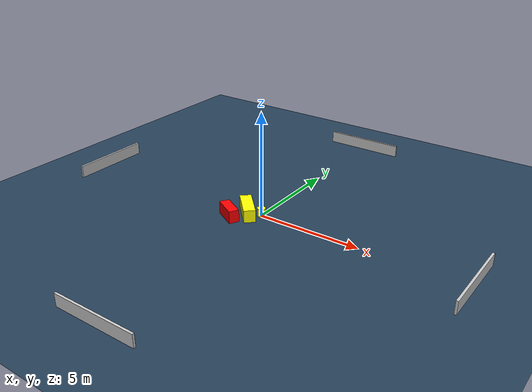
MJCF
<?xml version="1.0" ?>
<mujoco model="generated_environment">
  <option timestep="0.01" integrator="RK4" cone="elliptic"/>
  <default>
    <geom density="1"/>
  </default>
  <asset>
    <texture builtin="gradient" height="3072" name="skybox" rgb1="0.3 0.5 0.7" rgb2="0 0 0" type="skybox" width="512"/>
    <texture builtin="checker" height="300" name="groundplane" rgb1="0.2 0.3 0.4" rgb2="0.1 0.2 0.3" type="2d" width="300"/>
    <material name="groundplane" reflectance="0.2" texrepeat="5 5" texture="groundplane"/>
  </asset>
  <worldbody>
    <light dir="0 0 -1" directional="true" pos="0 0 1.5"/>
    <geom condim="3" friction="0.5 0.005 0.001" material="groundplane" name="floor" pos="0 0 0" size="0 0 0.05" type="plane"/>
    <body name="walls">
      <geom name="wall_1" condim="4" pos="-10.0 0.0 0.3" rgba="0.800000011920929 0.800000011920929 0.800000011920929 1.0" size="0.05 2.0 0.3" type="box"/>
      <geom name="wall_2" condim="4" pos="10.0 0.0 0.3" rgba="0.800000011920929 0.800000011920929 0.800000011920929 1.0" size="0.05 2.0 0.3" type="box"/>
      <geom name="wall_3" condim="4" pos="0.0 -10.0 0.3" rgba="0.800000011920929 0.800000011920929 0.800000011920929 1.0" size="2.0 0.05 0.3" type="box"/>
      <geom name="wall_4" condim="4" pos="0.0 10.0 0.3" rgba="0.800000011920929 0.800000011920929 0.800000011920929 1.0" size="2.0 0.05 0.3" type="box"/>
    </body>
    <body name="robot">
      <joint name="joint_x" type="slide" pos="0 0 0" axis="1 0 0"/>
      <joint name="joint_y" type="slide" pos="0 0 0" axis="0 1 0"/>
      <geom name="robot" type="cylinder" pos="0.0 0.0 0.2" size="0.2 0.2 0.0" mass="5.0" friction="1.0 0.005 0.0001" condim="4" rgba="1.0 1.0 0.0 1.0"/>
    </body>
    <body name="obstacle_1_movable">
      <geom name="obstacle_1_movable" condim="4" pos="-0.6069800317306372 -0.2648041815567543 0.3" euler="0 0 43.553856232441824" friction="0.0 0.005 0.001" rgba="1.0 1.0 0.0 1.0" size="0.27430861584678545 0.7966081767610484 0.3" type="box" mass="0.1"/>
      <joint type="free"/>
    </body>
    <body name="obstacle_2_static">
      <geom name="obstacle_2_static" condim="4" pos="-1.1101447155469932 -0.9875231499472183 0.3" euler="0 0 150.61923250394486" friction="0.0 0.005 0.001" rgba="1.0 0.0 0.0 1.0" size="0.5728121827095694 0.2405098320951422 0.3" type="box"/>
    </body>
  </worldbody>
  <actuator>
    <motor name="actuator_x" joint="joint_x" gear="1" ctrlrange="-1 1"/>
    <motor name="actuator_y" joint="joint_y" gear="1" ctrlrange="-1 1"/>
  </actuator>
</mujoco>
